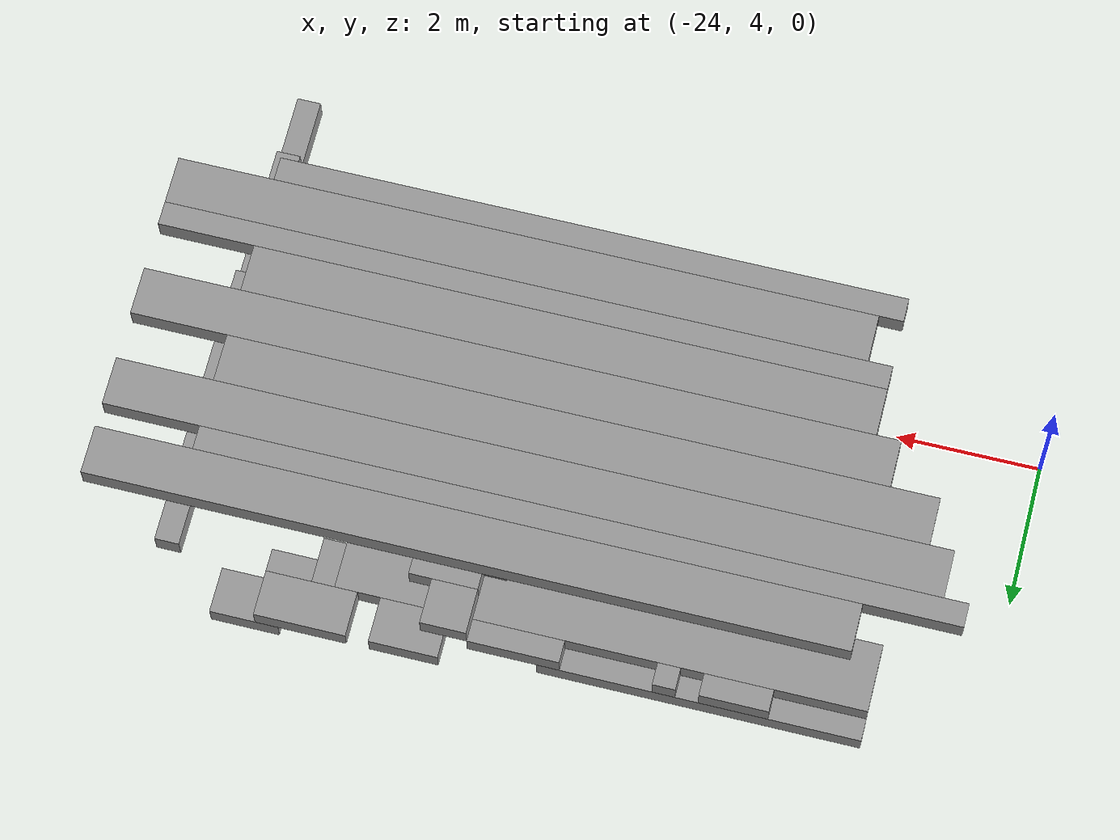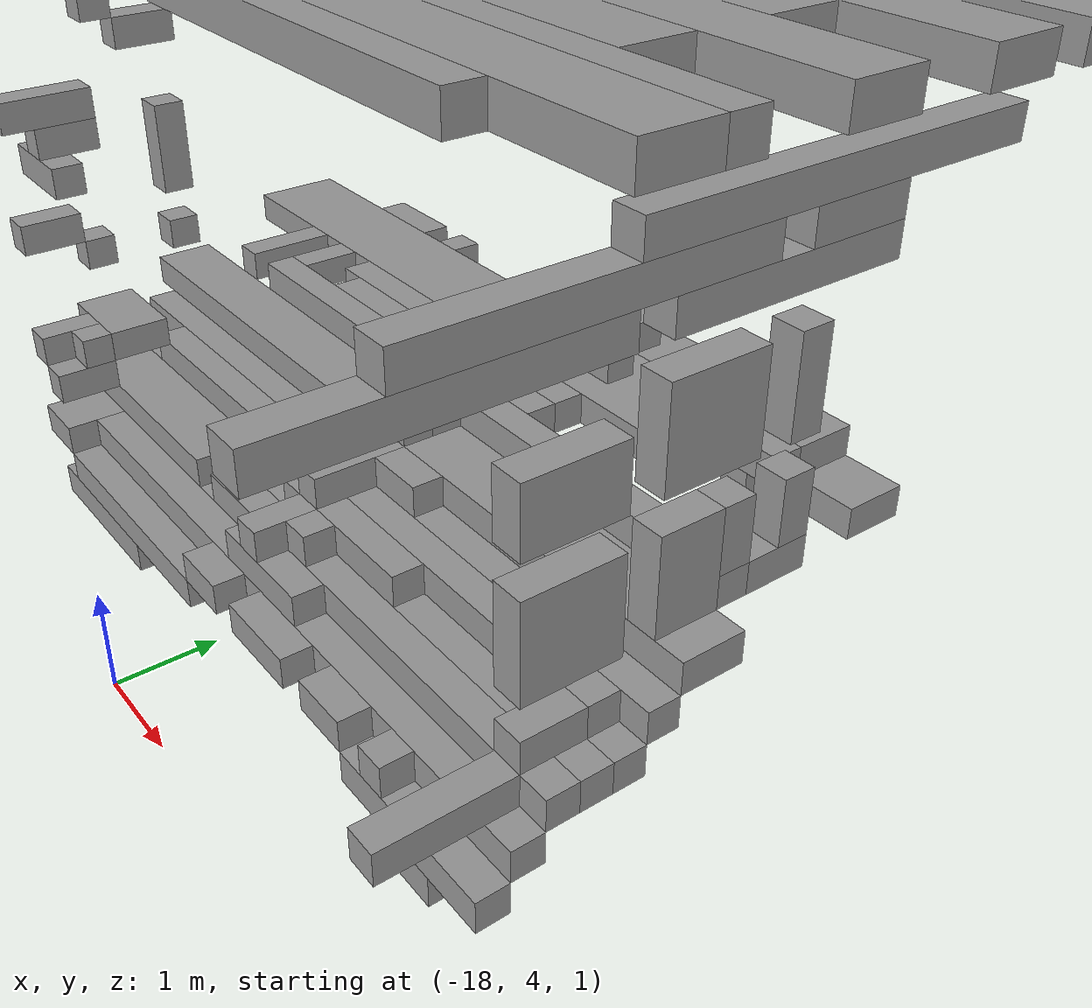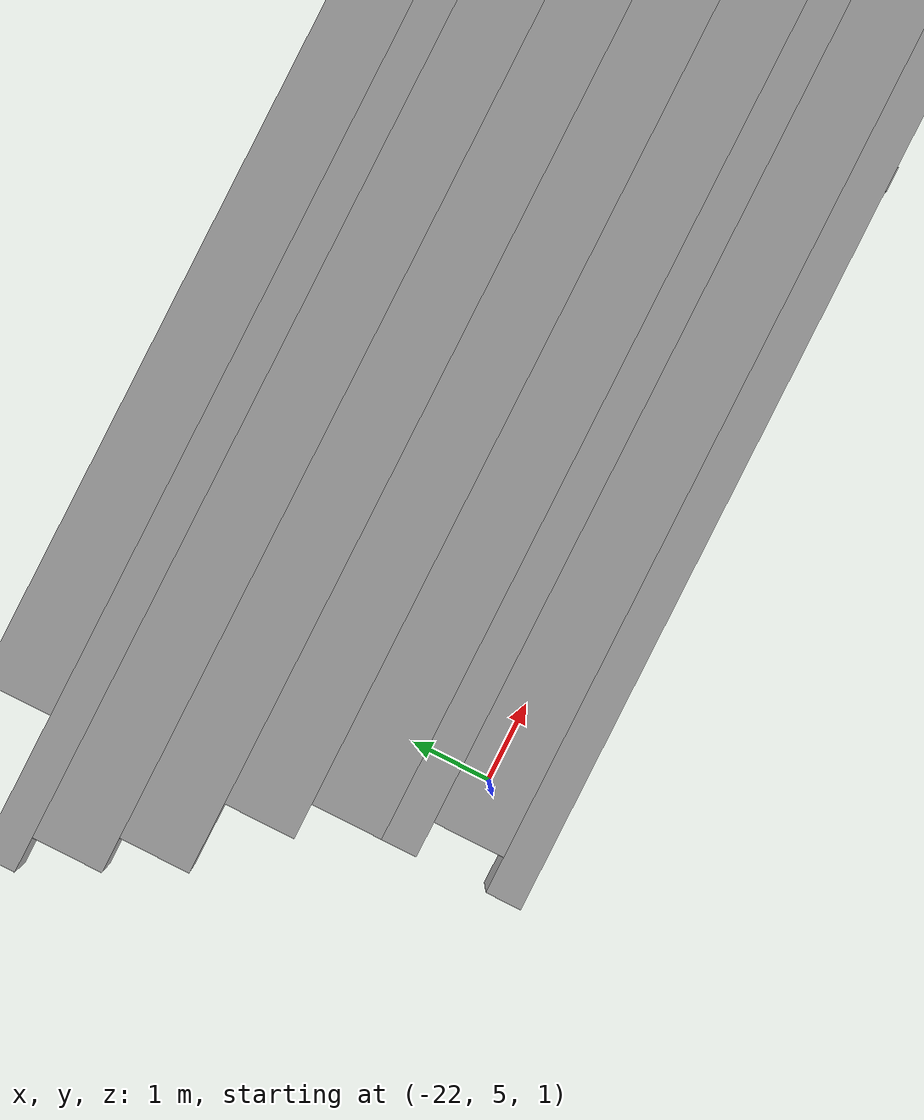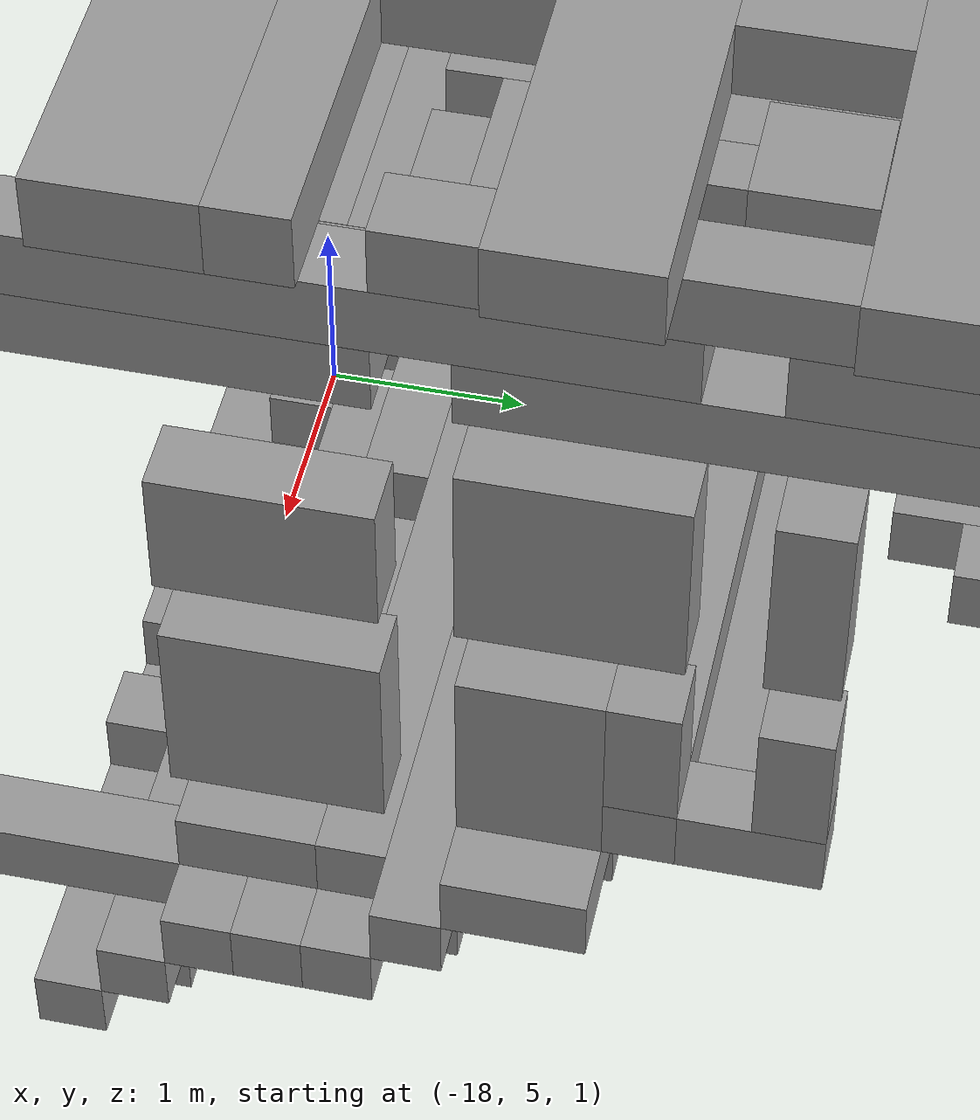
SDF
<sdf version="1.6">
 <world name="bt_world">
  <include><uri>model://sun</uri></include>
  <model name="obstacle_485">
   <static>true</static>
   <pose>-18.75 8.85 7.05 0 0 0</pose>
   <link name="link">
    <collision name="collision"><geometry><box><size>9.299999999999999 0.3 0.3</size></box></geometry></collision>
    <visual name="visual">
     <geometry><box><size>9.299999999999999 0.3 0.3</size></box></geometry>
     <material><ambient>0.5 0.5 0.5 1</ambient><diffuse>0.6 0.6 0.6 1</diffuse></material>
    </visual>
   </link>
  </model>
  <model name="obstacle_510">
   <static>true</static>
   <pose>-18.0 8.4 7.05 0 0 0</pose>
   <link name="link">
    <collision name="collision"><geometry><box><size>10.2 0.6 0.3</size></box></geometry></collision>
    <visual name="visual">
     <geometry><box><size>10.2 0.6 0.3</size></box></geometry>
     <material><ambient>0.5 0.5 0.5 1</ambient><diffuse>0.6 0.6 0.6 1</diffuse></material>
    </visual>
   </link>
  </model>
  <model name="obstacle_535">
   <static>true</static>
   <pose>-18.45 7.8 7.05 0 0 0</pose>
   <link name="link">
    <collision name="collision"><geometry><box><size>8.7 0.6 0.3</size></box></geometry></collision>
    <visual name="visual">
     <geometry><box><size>8.7 0.6 0.3</size></box></geometry>
     <material><ambient>0.5 0.5 0.5 1</ambient><diffuse>0.6 0.6 0.6 1</diffuse></material>
    </visual>
   </link>
  </model>
  <model name="obstacle_570">
   <static>true</static>
   <pose>-19.05 8.549999999999999 3.15 0 0 0</pose>
   <link name="link">
    <collision name="collision">
     <geometry><box><size>6.8999999999999995 0.8999999999999999 0.3</size></box></geometry>
    </collision>
    <visual name="visual">
     <geometry><box><size>6.8999999999999995 0.8999999999999999 0.3</size></box></geometry>
     <material><ambient>0.5 0.5 0.5 1</ambient><diffuse>0.6 0.6 0.6 1</diffuse></material>
    </visual>
   </link>
  </model>
  <model name="obstacle_577">
   <static>true</static>
   <pose>-20.4 9.15 2.85 0 0 0</pose>
   <link name="link">
    <collision name="collision"><geometry><box><size>4.2 0.3 0.3</size></box></geometry></collision>
    <visual name="visual">
     <geometry><box><size>4.2 0.3 0.3</size></box></geometry>
     <material><ambient>0.5 0.5 0.5 1</ambient><diffuse>0.6 0.6 0.6 1</diffuse></material>
    </visual>
   </link>
  </model>
  <model name="obstacle_620">
   <static>true</static>
   <pose>-17.849999999999998 6.8999999999999995 2.85 0 0 0</pose>
   <link name="link">
    <collision name="collision"><geometry><box><size>8.7 0.6 0.3</size></box></geometry></collision>
    <visual name="visual">
     <geometry><box><size>8.7 0.6 0.3</size></box></geometry>
     <material><ambient>0.5 0.5 0.5 1</ambient><diffuse>0.6 0.6 0.6 1</diffuse></material>
    </visual>
   </link>
  </model>
  <model name="obstacle_621">
   <static>true</static>
   <pose>-17.55 7.199999999999999 7.05 0 0 0</pose>
   <link name="link">
    <collision name="collision"><geometry><box><size>9.299999999999999 0.6 0.3</size></box></geometry></collision>
    <visual name="visual">
     <geometry><box><size>9.299999999999999 0.6 0.3</size></box></geometry>
     <material><ambient>0.5 0.5 0.5 1</ambient><diffuse>0.6 0.6 0.6 1</diffuse></material>
    </visual>
   </link>
  </model>
  <model name="obstacle_641">
   <static>true</static>
   <pose>-17.55 9.299999999999999 7.05 0 0 0</pose>
   <link name="link">
    <collision name="collision"><geometry><box><size>9.299999999999999 0.6 0.3</size></box></geometry></collision>
    <visual name="visual">
     <geometry><box><size>9.299999999999999 0.6 0.3</size></box></geometry>
     <material><ambient>0.5 0.5 0.5 1</ambient><diffuse>0.6 0.6 0.6 1</diffuse></material>
    </visual>
   </link>
  </model>
  <model name="obstacle_671">
   <static>true</static>
   <pose>-18.0 5.25 7.05 0 0 0</pose>
   <link name="link">
    <collision name="collision"><geometry><box><size>7.8 0.3 0.3</size></box></geometry></collision>
    <visual name="visual">
     <geometry><box><size>7.8 0.3 0.3</size></box></geometry>
     <material><ambient>0.5 0.5 0.5 1</ambient><diffuse>0.6 0.6 0.6 1</diffuse></material>
    </visual>
   </link>
  </model>
  <model name="obstacle_673">
   <static>true</static>
   <pose>-17.4 6.1499999999999995 7.05 0 0 0</pose>
   <link name="link">
    <collision name="collision"><geometry><box><size>9.0 0.3 0.3</size></box></geometry></collision>
    <visual name="visual">
     <geometry><box><size>9.0 0.3 0.3</size></box></geometry>
     <material><ambient>0.5 0.5 0.5 1</ambient><diffuse>0.6 0.6 0.6 1</diffuse></material>
    </visual>
   </link>
  </model>
  <model name="obstacle_674">
   <static>true</static>
   <pose>-19.5 6.45 2.55 0 0 0</pose>
   <link name="link">
    <collision name="collision"><geometry><box><size>4.8 0.3 0.3</size></box></geometry></collision>
    <visual name="visual">
     <geometry><box><size>4.8 0.3 0.3</size></box></geometry>
     <material><ambient>0.5 0.5 0.5 1</ambient><diffuse>0.6 0.6 0.6 1</diffuse></material>
    </visual>
   </link>
  </model>
  <model name="obstacle_676">
   <static>true</static>
   <pose>-18.0 6.6 7.05 0 0 0</pose>
   <link name="link">
    <collision name="collision"><geometry><box><size>7.8 0.6 0.3</size></box></geometry></collision>
    <visual name="visual">
     <geometry><box><size>7.8 0.6 0.3</size></box></geometry>
     <material><ambient>0.5 0.5 0.5 1</ambient><diffuse>0.6 0.6 0.6 1</diffuse></material>
    </visual>
   </link>
  </model>
  <model name="obstacle_712">
   <static>true</static>
   <pose>-21.15 5.25 4.6499999999999995 0 0 0</pose>
   <link name="link">
    <collision name="collision">
     <geometry><box><size>0.8999999999999999 0.3 0.3</size></box></geometry>
    </collision>
    <visual name="visual">
     <geometry><box><size>0.8999999999999999 0.3 0.3</size></box></geometry>
     <material><ambient>0.5 0.5 0.5 1</ambient><diffuse>0.6 0.6 0.6 1</diffuse></material>
    </visual>
   </link>
  </model>
  <model name="obstacle_713">
   <static>true</static>
   <pose>-20.25 5.7 2.25 0 0 0</pose>
   <link name="link">
    <collision name="collision">
     <geometry><box><size>2.6999999999999997 0.6 0.3</size></box></geometry>
    </collision>
    <visual name="visual">
     <geometry><box><size>2.6999999999999997 0.6 0.3</size></box></geometry>
     <material><ambient>0.5 0.5 0.5 1</ambient><diffuse>0.6 0.6 0.6 1</diffuse></material>
    </visual>
   </link>
  </model>
  <model name="obstacle_714">
   <static>true</static>
   <pose>-21.15 5.7 2.85 0 0 0</pose>
   <link name="link">
    <collision name="collision">
     <geometry><box><size>0.8999999999999999 0.6 0.3</size></box></geometry>
    </collision>
    <visual name="visual">
     <geometry><box><size>0.8999999999999999 0.6 0.3</size></box></geometry>
     <material><ambient>0.5 0.5 0.5 1</ambient><diffuse>0.6 0.6 0.6 1</diffuse></material>
    </visual>
   </link>
  </model>
  <model name="obstacle_719">
   <static>true</static>
   <pose>-17.25 5.7 7.05 0 0 0</pose>
   <link name="link">
    <collision name="collision"><geometry><box><size>8.7 0.6 0.3</size></box></geometry></collision>
    <visual name="visual">
     <geometry><box><size>8.7 0.6 0.3</size></box></geometry>
     <material><ambient>0.5 0.5 0.5 1</ambient><diffuse>0.6 0.6 0.6 1</diffuse></material>
    </visual>
   </link>
  </model>
  <model name="obstacle_732">
   <static>true</static>
   <pose>-19.5 6.75 2.55 0 0 0</pose>
   <link name="link">
    <collision name="collision"><geometry><box><size>4.2 0.3 0.3</size></box></geometry></collision>
    <visual name="visual">
     <geometry><box><size>4.2 0.3 0.3</size></box></geometry>
     <material><ambient>0.5 0.5 0.5 1</ambient><diffuse>0.6 0.6 0.6 1</diffuse></material>
    </visual>
   </link>
  </model>
  <model name="obstacle_770">
   <static>true</static>
   <pose>-21.0 5.1 1.95 0 0 0</pose>
   <link name="link">
    <collision name="collision"><geometry><box><size>0.6 0.6 0.3</size></box></geometry></collision>
    <visual name="visual">
     <geometry><box><size>0.6 0.6 0.3</size></box></geometry>
     <material><ambient>0.5 0.5 0.5 1</ambient><diffuse>0.6 0.6 0.6 1</diffuse></material>
    </visual>
   </link>
  </model>
  <model name="obstacle_771">
   <static>true</static>
   <pose>-21.15 5.1 2.85 0 0 0</pose>
   <link name="link">
    <collision name="collision"><geometry><box><size>0.3 0.6 0.3</size></box></geometry></collision>
    <visual name="visual">
     <geometry><box><size>0.3 0.6 0.3</size></box></geometry>
     <material><ambient>0.5 0.5 0.5 1</ambient><diffuse>0.6 0.6 0.6 1</diffuse></material>
    </visual>
   </link>
  </model>
  <model name="obstacle_772">
   <static>true</static>
   <pose>-21.15 5.1 4.05 0 0 0</pose>
   <link name="link">
    <collision name="collision"><geometry><box><size>0.3 0.6 0.3</size></box></geometry></collision>
    <visual name="visual">
     <geometry><box><size>0.3 0.6 0.3</size></box></geometry>
     <material><ambient>0.5 0.5 0.5 1</ambient><diffuse>0.6 0.6 0.6 1</diffuse></material>
    </visual>
   </link>
  </model>
  <model name="obstacle_773">
   <static>true</static>
   <pose>-21.15 5.25 5.25 0 0 0</pose>
   <link name="link">
    <collision name="collision">
     <geometry><box><size>0.3 0.8999999999999999 0.3</size></box></geometry>
    </collision>
    <visual name="visual">
     <geometry><box><size>0.3 0.8999999999999999 0.3</size></box></geometry>
     <material><ambient>0.5 0.5 0.5 1</ambient><diffuse>0.6 0.6 0.6 1</diffuse></material>
    </visual>
   </link>
  </model>
  <model name="obstacle_774">
   <static>true</static>
   <pose>-21.15 5.3999999999999995 4.95 0 0 0</pose>
   <link name="link">
    <collision name="collision"><geometry><box><size>0.3 0.6 0.3</size></box></geometry></collision>
    <visual name="visual">
     <geometry><box><size>0.3 0.6 0.3</size></box></geometry>
     <material><ambient>0.5 0.5 0.5 1</ambient><diffuse>0.6 0.6 0.6 1</diffuse></material>
    </visual>
   </link>
  </model>
  <model name="obstacle_775">
   <static>true</static>
   <pose>-21.15 5.7 1.95 0 0 0</pose>
   <link name="link">
    <collision name="collision"><geometry><box><size>0.3 0.6 0.3</size></box></geometry></collision>
    <visual name="visual">
     <geometry><box><size>0.3 0.6 0.3</size></box></geometry>
     <material><ambient>0.5 0.5 0.5 1</ambient><diffuse>0.6 0.6 0.6 1</diffuse></material>
    </visual>
   </link>
  </model>
  <model name="obstacle_776">
   <static>true</static>
   <pose>-21.15 5.55 3.75 0 0 0</pose>
   <link name="link">
    <collision name="collision"><geometry><box><size>0.3 0.3 0.3</size></box></geometry></collision>
    <visual name="visual">
     <geometry><box><size>0.3 0.3 0.3</size></box></geometry>
     <material><ambient>0.5 0.5 0.5 1</ambient><diffuse>0.6 0.6 0.6 1</diffuse></material>
    </visual>
   </link>
  </model>
  <model name="obstacle_777">
   <static>true</static>
   <pose>-21.15 5.85 6.1499999999999995 0 0 0</pose>
   <link name="link">
    <collision name="collision"><geometry><box><size>0.3 0.3 0.3</size></box></geometry></collision>
    <visual name="visual">
     <geometry><box><size>0.3 0.3 0.3</size></box></geometry>
     <material><ambient>0.5 0.5 0.5 1</ambient><diffuse>0.6 0.6 0.6 1</diffuse></material>
    </visual>
   </link>
  </model>
  <model name="obstacle_778">
   <static>true</static>
   <pose>-17.4 6.1499999999999995 2.25 0 0 0</pose>
   <link name="link">
    <collision name="collision"><geometry><box><size>7.8 0.3 0.3</size></box></geometry></collision>
    <visual name="visual">
     <geometry><box><size>7.8 0.3 0.3</size></box></geometry>
     <material><ambient>0.5 0.5 0.5 1</ambient><diffuse>0.6 0.6 0.6 1</diffuse></material>
    </visual>
   </link>
  </model>
  <model name="obstacle_779">
   <static>true</static>
   <pose>-21.15 6.3 5.85 0 0 0</pose>
   <link name="link">
    <collision name="collision"><geometry><box><size>0.3 0.6 0.3</size></box></geometry></collision>
    <visual name="visual">
     <geometry><box><size>0.3 0.6 0.3</size></box></geometry>
     <material><ambient>0.5 0.5 0.5 1</ambient><diffuse>0.6 0.6 0.6 1</diffuse></material>
    </visual>
   </link>
  </model>
  <model name="obstacle_780">
   <static>true</static>
   <pose>-17.55 6.45 2.25 0 0 0</pose>
   <link name="link">
    <collision name="collision"><geometry><box><size>7.5 0.3 0.3</size></box></geometry></collision>
    <visual name="visual">
     <geometry><box><size>7.5 0.3 0.3</size></box></geometry>
     <material><ambient>0.5 0.5 0.5 1</ambient><diffuse>0.6 0.6 0.6 1</diffuse></material>
    </visual>
   </link>
  </model>
  <model name="obstacle_781">
   <static>true</static>
   <pose>-21.15 6.45 3.75 0 0 0</pose>
   <link name="link">
    <collision name="collision"><geometry><box><size>0.3 0.3 0.3</size></box></geometry></collision>
    <visual name="visual">
     <geometry><box><size>0.3 0.3 0.3</size></box></geometry>
     <material><ambient>0.5 0.5 0.5 1</ambient><diffuse>0.6 0.6 0.6 1</diffuse></material>
    </visual>
   </link>
  </model>
  <model name="obstacle_782">
   <static>true</static>
   <pose>-21.15 6.45 4.6499999999999995 0 0 0</pose>
   <link name="link">
    <collision name="collision">
     <geometry><box><size>0.3 0.3 0.8999999999999999</size></box></geometry>
    </collision>
    <visual name="visual">
     <geometry><box><size>0.3 0.3 0.8999999999999999</size></box></geometry>
     <material><ambient>0.5 0.5 0.5 1</ambient><diffuse>0.6 0.6 0.6 1</diffuse></material>
    </visual>
   </link>
  </model>
  <model name="obstacle_783">
   <static>true</static>
   <pose>-21.15 6.8999999999999995 6.45 0 0 0</pose>
   <link name="link">
    <collision name="collision"><geometry><box><size>0.3 0.6 0.3</size></box></geometry></collision>
    <visual name="visual">
     <geometry><box><size>0.3 0.6 0.3</size></box></geometry>
     <material><ambient>0.5 0.5 0.5 1</ambient><diffuse>0.6 0.6 0.6 1</diffuse></material>
    </visual>
   </link>
  </model>
  <model name="obstacle_784">
   <static>true</static>
   <pose>-17.7 7.05 2.55 0 0 0</pose>
   <link name="link">
    <collision name="collision"><geometry><box><size>7.199999999999999 0.3 0.3</size></box></geometry></collision>
    <visual name="visual">
     <geometry><box><size>7.199999999999999 0.3 0.3</size></box></geometry>
     <material><ambient>0.5 0.5 0.5 1</ambient><diffuse>0.6 0.6 0.6 1</diffuse></material>
    </visual>
   </link>
  </model>
  <model name="obstacle_785">
   <static>true</static>
   <pose>-21.15 7.6499999999999995 3.15 0 0 0</pose>
   <link name="link">
    <collision name="collision">
     <geometry><box><size>0.3 0.8999999999999999 0.3</size></box></geometry>
    </collision>
    <visual name="visual">
     <geometry><box><size>0.3 0.8999999999999999 0.3</size></box></geometry>
     <material><ambient>0.5 0.5 0.5 1</ambient><diffuse>0.6 0.6 0.6 1</diffuse></material>
    </visual>
   </link>
  </model>
  <model name="obstacle_786">
   <static>true</static>
   <pose>-20.55 8.85 2.85 0 0 0</pose>
   <link name="link">
    <collision name="collision"><geometry><box><size>1.5 0.3 0.3</size></box></geometry></collision>
    <visual name="visual">
     <geometry><box><size>1.5 0.3 0.3</size></box></geometry>
     <material><ambient>0.5 0.5 0.5 1</ambient><diffuse>0.6 0.6 0.6 1</diffuse></material>
    </visual>
   </link>
  </model>
  <model name="obstacle_787">
   <static>true</static>
   <pose>-20.849999999999998 9.15 3.15 0 0 0</pose>
   <link name="link">
    <collision name="collision">
     <geometry><box><size>0.8999999999999999 0.3 0.3</size></box></geometry>
    </collision>
    <visual name="visual">
     <geometry><box><size>0.8999999999999999 0.3 0.3</size></box></geometry>
     <material><ambient>0.5 0.5 0.5 1</ambient><diffuse>0.6 0.6 0.6 1</diffuse></material>
    </visual>
   </link>
  </model>
  <model name="obstacle_830">
   <static>true</static>
   <pose>-20.099999999999998 4.95 1.3499999999999999 0 0 0</pose>
   <link name="link">
    <collision name="collision">
     <geometry><box><size>1.7999999999999998 0.3 0.3</size></box></geometry>
    </collision>
    <visual name="visual">
     <geometry><box><size>1.7999999999999998 0.3 0.3</size></box></geometry>
     <material><ambient>0.5 0.5 0.5 1</ambient><diffuse>0.6 0.6 0.6 1</diffuse></material>
    </visual>
   </link>
  </model>
  <model name="obstacle_831">
   <static>true</static>
   <pose>-20.849999999999998 5.1 2.55 0 0 0</pose>
   <link name="link">
    <collision name="collision"><geometry><box><size>0.3 0.6 0.3</size></box></geometry></collision>
    <visual name="visual">
     <geometry><box><size>0.3 0.6 0.3</size></box></geometry>
     <material><ambient>0.5 0.5 0.5 1</ambient><diffuse>0.6 0.6 0.6 1</diffuse></material>
    </visual>
   </link>
  </model>
  <model name="obstacle_832">
   <static>true</static>
   <pose>-19.5 5.25 1.65 0 0 0</pose>
   <link name="link">
    <collision name="collision"><geometry><box><size>3.0 0.3 0.3</size></box></geometry></collision>
    <visual name="visual">
     <geometry><box><size>3.0 0.3 0.3</size></box></geometry>
     <material><ambient>0.5 0.5 0.5 1</ambient><diffuse>0.6 0.6 0.6 1</diffuse></material>
    </visual>
   </link>
  </model>
  <model name="obstacle_833">
   <static>true</static>
   <pose>-20.849999999999998 5.25 2.85 0 0 0</pose>
   <link name="link">
    <collision name="collision"><geometry><box><size>0.3 0.3 0.3</size></box></geometry></collision>
    <visual name="visual">
     <geometry><box><size>0.3 0.3 0.3</size></box></geometry>
     <material><ambient>0.5 0.5 0.5 1</ambient><diffuse>0.6 0.6 0.6 1</diffuse></material>
    </visual>
   </link>
  </model>
  <model name="obstacle_834">
   <static>true</static>
   <pose>-19.05 5.85 1.95 0 0 0</pose>
   <link name="link">
    <collision name="collision"><geometry><box><size>3.9 0.3 0.3</size></box></geometry></collision>
    <visual name="visual">
     <geometry><box><size>3.9 0.3 0.3</size></box></geometry>
     <material><ambient>0.5 0.5 0.5 1</ambient><diffuse>0.6 0.6 0.6 1</diffuse></material>
    </visual>
   </link>
  </model>
  <model name="obstacle_835">
   <static>true</static>
   <pose>-17.4 6.1499999999999995 2.55 0 0 0</pose>
   <link name="link">
    <collision name="collision"><geometry><box><size>7.199999999999999 0.3 0.3</size></box></geometry></collision>
    <visual name="visual">
     <geometry><box><size>7.199999999999999 0.3 0.3</size></box></geometry>
     <material><ambient>0.5 0.5 0.5 1</ambient><diffuse>0.6 0.6 0.6 1</diffuse></material>
    </visual>
   </link>
  </model>
  <model name="obstacle_884">
   <static>true</static>
   <pose>-19.349999999999998 4.95 1.65 0 0 0</pose>
   <link name="link">
    <collision name="collision">
     <geometry><box><size>2.6999999999999997 0.3 0.3</size></box></geometry>
    </collision>
    <visual name="visual">
     <geometry><box><size>2.6999999999999997 0.3 0.3</size></box></geometry>
     <material><ambient>0.5 0.5 0.5 1</ambient><diffuse>0.6 0.6 0.6 1</diffuse></material>
    </visual>
   </link>
  </model>
  <model name="obstacle_885">
   <static>true</static>
   <pose>-17.099999999999998 5.25 1.95 0 0 0</pose>
   <link name="link">
    <collision name="collision"><geometry><box><size>7.199999999999999 0.3 0.3</size></box></geometry></collision>
    <visual name="visual">
     <geometry><box><size>7.199999999999999 0.3 0.3</size></box></geometry>
     <material><ambient>0.5 0.5 0.5 1</ambient><diffuse>0.6 0.6 0.6 1</diffuse></material>
    </visual>
   </link>
  </model>
  <model name="obstacle_886">
   <static>true</static>
   <pose>-17.849999999999998 5.55 1.95 0 0 0</pose>
   <link name="link">
    <collision name="collision"><geometry><box><size>5.7 0.3 0.3</size></box></geometry></collision>
    <visual name="visual">
     <geometry><box><size>5.7 0.3 0.3</size></box></geometry>
     <material><ambient>0.5 0.5 0.5 1</ambient><diffuse>0.6 0.6 0.6 1</diffuse></material>
    </visual>
   </link>
  </model>
  <model name="obstacle_887">
   <static>true</static>
   <pose>-19.95 7.5 2.85 0 0 0</pose>
   <link name="link">
    <collision name="collision"><geometry><box><size>1.5 0.6 0.3</size></box></geometry></collision>
    <visual name="visual">
     <geometry><box><size>1.5 0.6 0.3</size></box></geometry>
     <material><ambient>0.5 0.5 0.5 1</ambient><diffuse>0.6 0.6 0.6 1</diffuse></material>
    </visual>
   </link>
  </model>
  <model name="obstacle_888">
   <static>true</static>
   <pose>-19.65 7.35 3.15 0 0 0</pose>
   <link name="link">
    <collision name="collision"><geometry><box><size>2.1 0.3 0.3</size></box></geometry></collision>
    <visual name="visual">
     <geometry><box><size>2.1 0.3 0.3</size></box></geometry>
     <material><ambient>0.5 0.5 0.5 1</ambient><diffuse>0.6 0.6 0.6 1</diffuse></material>
    </visual>
   </link>
  </model>
  <model name="obstacle_889">
   <static>true</static>
   <pose>-20.55 7.8 3.15 0 0 0</pose>
   <link name="link">
    <collision name="collision"><geometry><box><size>0.3 0.6 0.3</size></box></geometry></collision>
    <visual name="visual">
     <geometry><box><size>0.3 0.6 0.3</size></box></geometry>
     <material><ambient>0.5 0.5 0.5 1</ambient><diffuse>0.6 0.6 0.6 1</diffuse></material>
    </visual>
   </link>
  </model>
  <model name="obstacle_936">
   <static>true</static>
   <pose>-20.25 8.25 2.85 0 0 0</pose>
   <link name="link">
    <collision name="collision"><geometry><box><size>0.3 0.3 0.3</size></box></geometry></collision>
    <visual name="visual">
     <geometry><box><size>0.3 0.3 0.3</size></box></geometry>
     <material><ambient>0.5 0.5 0.5 1</ambient><diffuse>0.6 0.6 0.6 1</diffuse></material>
    </visual>
   </link>
  </model>
  <model name="obstacle_962">
   <static>true</static>
   <pose>-18.3 7.949999999999999 3.15 0 0 0</pose>
   <link name="link">
    <collision name="collision">
     <geometry><box><size>3.5999999999999996 0.3 0.3</size></box></geometry>
    </collision>
    <visual name="visual">
     <geometry><box><size>3.5999999999999996 0.3 0.3</size></box></geometry>
     <material><ambient>0.5 0.5 0.5 1</ambient><diffuse>0.6 0.6 0.6 1</diffuse></material>
    </visual>
   </link>
  </model>
  <model name="obstacle_963">
   <static>true</static>
   <pose>-19.95 8.549999999999999 2.85 0 0 0</pose>
   <link name="link">
    <collision name="collision"><geometry><box><size>0.3 0.3 0.3</size></box></geometry></collision>
    <visual name="visual">
     <geometry><box><size>0.3 0.3 0.3</size></box></geometry>
     <material><ambient>0.5 0.5 0.5 1</ambient><diffuse>0.6 0.6 0.6 1</diffuse></material>
    </visual>
   </link>
  </model>
  <model name="obstacle_964">
   <static>true</static>
   <pose>-19.95 9.15 3.15 0 0 0</pose>
   <link name="link">
    <collision name="collision"><geometry><box><size>0.3 0.3 0.3</size></box></geometry></collision>
    <visual name="visual">
     <geometry><box><size>0.3 0.3 0.3</size></box></geometry>
     <material><ambient>0.5 0.5 0.5 1</ambient><diffuse>0.6 0.6 0.6 1</diffuse></material>
    </visual>
   </link>
  </model>
  <model name="obstacle_984">
   <static>true</static>
   <pose>-18.15 7.6499999999999995 3.15 0 0 0</pose>
   <link name="link">
    <collision name="collision"><geometry><box><size>3.3 0.3 0.3</size></box></geometry></collision>
    <visual name="visual">
     <geometry><box><size>3.3 0.3 0.3</size></box></geometry>
     <material><ambient>0.5 0.5 0.5 1</ambient><diffuse>0.6 0.6 0.6 1</diffuse></material>
    </visual>
   </link>
  </model>
  <model name="obstacle_1018">
   <static>true</static>
   <pose>-18.75 8.85 2.85 0 0 0</pose>
   <link name="link">
    <collision name="collision">
     <geometry><box><size>0.8999999999999999 0.3 0.3</size></box></geometry>
    </collision>
    <visual name="visual">
     <geometry><box><size>0.8999999999999999 0.3 0.3</size></box></geometry>
     <material><ambient>0.5 0.5 0.5 1</ambient><diffuse>0.6 0.6 0.6 1</diffuse></material>
    </visual>
   </link>
  </model>
  <model name="obstacle_1028">
   <static>true</static>
   <pose>-16.2 5.85 2.25 0 0 0</pose>
   <link name="link">
    <collision name="collision">
     <geometry><box><size>5.3999999999999995 0.3 0.3</size></box></geometry>
    </collision>
    <visual name="visual">
     <geometry><box><size>5.3999999999999995 0.3 0.3</size></box></geometry>
     <material><ambient>0.5 0.5 0.5 1</ambient><diffuse>0.6 0.6 0.6 1</diffuse></material>
    </visual>
   </link>
  </model>
  <model name="obstacle_1037">
   <static>true</static>
   <pose>-16.05 5.55 2.25 0 0 0</pose>
   <link name="link">
    <collision name="collision"><geometry><box><size>5.1 0.3 0.3</size></box></geometry></collision>
    <visual name="visual">
     <geometry><box><size>5.1 0.3 0.3</size></box></geometry>
     <material><ambient>0.5 0.5 0.5 1</ambient><diffuse>0.6 0.6 0.6 1</diffuse></material>
    </visual>
   </link>
  </model>
  <model name="obstacle_1038">
   <static>true</static>
   <pose>-18.0 9.15 3.15 0 0 0</pose>
   <link name="link">
    <collision name="collision"><geometry><box><size>1.2 0.3 0.3</size></box></geometry></collision>
    <visual name="visual">
     <geometry><box><size>1.2 0.3 0.3</size></box></geometry>
     <material><ambient>0.5 0.5 0.5 1</ambient><diffuse>0.6 0.6 0.6 1</diffuse></material>
    </visual>
   </link>
  </model>
  <model name="obstacle_1060">
   <static>true</static>
   <pose>-17.849999999999998 7.35 3.15 0 0 0</pose>
   <link name="link">
    <collision name="collision">
     <geometry><box><size>0.8999999999999999 0.3 0.3</size></box></geometry>
    </collision>
    <visual name="visual">
     <geometry><box><size>0.8999999999999999 0.3 0.3</size></box></geometry>
     <material><ambient>0.5 0.5 0.5 1</ambient><diffuse>0.6 0.6 0.6 1</diffuse></material>
    </visual>
   </link>
  </model>
  <model name="obstacle_1076">
   <static>true</static>
   <pose>-17.7 4.95 1.95 0 0 0</pose>
   <link name="link">
    <collision name="collision"><geometry><box><size>0.6 0.3 0.3</size></box></geometry></collision>
    <visual name="visual">
     <geometry><box><size>0.6 0.3 0.3</size></box></geometry>
     <material><ambient>0.5 0.5 0.5 1</ambient><diffuse>0.6 0.6 0.6 1</diffuse></material>
    </visual>
   </link>
  </model>
  <model name="obstacle_1095">
   <static>true</static>
   <pose>-17.099999999999998 5.25 2.25 0 0 0</pose>
   <link name="link">
    <collision name="collision"><geometry><box><size>1.2 0.3 0.3</size></box></geometry></collision>
    <visual name="visual">
     <geometry><box><size>1.2 0.3 0.3</size></box></geometry>
     <material><ambient>0.5 0.5 0.5 1</ambient><diffuse>0.6 0.6 0.6 1</diffuse></material>
    </visual>
   </link>
  </model>
  <model name="obstacle_1096">
   <static>true</static>
   <pose>-16.8 5.85 2.55 0 0 0</pose>
   <link name="link">
    <collision name="collision">
     <geometry><box><size>1.7999999999999998 0.3 0.3</size></box></geometry>
    </collision>
    <visual name="visual">
     <geometry><box><size>1.7999999999999998 0.3 0.3</size></box></geometry>
     <material><ambient>0.5 0.5 0.5 1</ambient><diffuse>0.6 0.6 0.6 1</diffuse></material>
    </visual>
   </link>
  </model>
  <model name="obstacle_1097">
   <static>true</static>
   <pose>-17.4 7.05 3.15 0 0 0</pose>
   <link name="link">
    <collision name="collision"><geometry><box><size>0.6 0.3 0.3</size></box></geometry></collision>
    <visual name="visual">
     <geometry><box><size>0.6 0.3 0.3</size></box></geometry>
     <material><ambient>0.5 0.5 0.5 1</ambient><diffuse>0.6 0.6 0.6 1</diffuse></material>
    </visual>
   </link>
  </model>
  <model name="obstacle_1098">
   <static>true</static>
   <pose>-17.4 7.5 3.4499999999999997 0 0 0</pose>
   <link name="link">
    <collision name="collision"><geometry><box><size>0.6 0.6 0.3</size></box></geometry></collision>
    <visual name="visual">
     <geometry><box><size>0.6 0.6 0.3</size></box></geometry>
     <material><ambient>0.5 0.5 0.5 1</ambient><diffuse>0.6 0.6 0.6 1</diffuse></material>
    </visual>
   </link>
  </model>
  <model name="obstacle_1099">
   <static>true</static>
   <pose>-17.25 8.25 3.4499999999999997 0 0 0</pose>
   <link name="link">
    <collision name="collision">
     <geometry><box><size>0.8999999999999999 0.3 0.3</size></box></geometry>
    </collision>
    <visual name="visual">
     <geometry><box><size>0.8999999999999999 0.3 0.3</size></box></geometry>
     <material><ambient>0.5 0.5 0.5 1</ambient><diffuse>0.6 0.6 0.6 1</diffuse></material>
    </visual>
   </link>
  </model>
  <model name="obstacle_1116">
   <static>true</static>
   <pose>-17.25 5.3999999999999995 2.55 0 0 0</pose>
   <link name="link">
    <collision name="collision"><geometry><box><size>0.3 0.6 0.3</size></box></geometry></collision>
    <visual name="visual">
     <geometry><box><size>0.3 0.6 0.3</size></box></geometry>
     <material><ambient>0.5 0.5 0.5 1</ambient><diffuse>0.6 0.6 0.6 1</diffuse></material>
    </visual>
   </link>
  </model>
  <model name="obstacle_1117">
   <static>true</static>
   <pose>-17.25 6.1499999999999995 2.85 0 0 0</pose>
   <link name="link">
    <collision name="collision">
     <geometry><box><size>0.3 0.8999999999999999 0.3</size></box></geometry>
    </collision>
    <visual name="visual">
     <geometry><box><size>0.3 0.8999999999999999 0.3</size></box></geometry>
     <material><ambient>0.5 0.5 0.5 1</ambient><diffuse>0.6 0.6 0.6 1</diffuse></material>
    </visual>
   </link>
  </model>
  <model name="obstacle_1118">
   <static>true</static>
   <pose>-17.25 6.75 3.15 0 0 0</pose>
   <link name="link">
    <collision name="collision"><geometry><box><size>0.3 0.3 0.3</size></box></geometry></collision>
    <visual name="visual">
     <geometry><box><size>0.3 0.3 0.3</size></box></geometry>
     <material><ambient>0.5 0.5 0.5 1</ambient><diffuse>0.6 0.6 0.6 1</diffuse></material>
    </visual>
   </link>
  </model>
  <model name="obstacle_1119">
   <static>true</static>
   <pose>-17.25 7.05 3.4499999999999997 0 0 0</pose>
   <link name="link">
    <collision name="collision"><geometry><box><size>0.3 0.3 0.3</size></box></geometry></collision>
    <visual name="visual">
     <geometry><box><size>0.3 0.3 0.3</size></box></geometry>
     <material><ambient>0.5 0.5 0.5 1</ambient><diffuse>0.6 0.6 0.6 1</diffuse></material>
    </visual>
   </link>
  </model>
  <model name="obstacle_1120">
   <static>true</static>
   <pose>-17.25 7.949999999999999 3.4499999999999997 0 0 0</pose>
   <link name="link">
    <collision name="collision"><geometry><box><size>0.3 0.3 0.3</size></box></geometry></collision>
    <visual name="visual">
     <geometry><box><size>0.3 0.3 0.3</size></box></geometry>
     <material><ambient>0.5 0.5 0.5 1</ambient><diffuse>0.6 0.6 0.6 1</diffuse></material>
    </visual>
   </link>
  </model>
  <model name="obstacle_1121">
   <static>true</static>
   <pose>-16.95 8.549999999999999 3.4499999999999997 0 0 0</pose>
   <link name="link">
    <collision name="collision">
     <geometry><box><size>0.8999999999999999 0.3 0.3</size></box></geometry>
    </collision>
    <visual name="visual">
     <geometry><box><size>0.8999999999999999 0.3 0.3</size></box></geometry>
     <material><ambient>0.5 0.5 0.5 1</ambient><diffuse>0.6 0.6 0.6 1</diffuse></material>
    </visual>
   </link>
  </model>
  <model name="obstacle_1122">
   <static>true</static>
   <pose>-17.099999999999998 9.0 3.4499999999999997 0 0 0</pose>
   <link name="link">
    <collision name="collision"><geometry><box><size>0.6 0.6 0.3</size></box></geometry></collision>
    <visual name="visual">
     <geometry><box><size>0.6 0.6 0.3</size></box></geometry>
     <material><ambient>0.5 0.5 0.5 1</ambient><diffuse>0.6 0.6 0.6 1</diffuse></material>
    </visual>
   </link>
  </model>
  <model name="obstacle_1167">
   <static>true</static>
   <pose>-16.65 4.95 1.95 0 0 0</pose>
   <link name="link">
    <collision name="collision">
     <geometry><box><size>0.8999999999999999 0.3 0.3</size></box></geometry>
    </collision>
    <visual name="visual">
     <geometry><box><size>0.8999999999999999 0.3 0.3</size></box></geometry>
     <material><ambient>0.5 0.5 0.5 1</ambient><diffuse>0.6 0.6 0.6 1</diffuse></material>
    </visual>
   </link>
  </model>
  <model name="obstacle_1168">
   <static>true</static>
   <pose>-16.95 5.55 2.55 0 0 0</pose>
   <link name="link">
    <collision name="collision"><geometry><box><size>0.3 0.3 0.3</size></box></geometry></collision>
    <visual name="visual">
     <geometry><box><size>0.3 0.3 0.3</size></box></geometry>
     <material><ambient>0.5 0.5 0.5 1</ambient><diffuse>0.6 0.6 0.6 1</diffuse></material>
    </visual>
   </link>
  </model>
  <model name="obstacle_1169">
   <static>true</static>
   <pose>-16.8 6.45 2.85 0 0 0</pose>
   <link name="link">
    <collision name="collision"><geometry><box><size>0.6 0.3 0.3</size></box></geometry></collision>
    <visual name="visual">
     <geometry><box><size>0.6 0.3 0.3</size></box></geometry>
     <material><ambient>0.5 0.5 0.5 1</ambient><diffuse>0.6 0.6 0.6 1</diffuse></material>
    </visual>
   </link>
  </model>
  <model name="obstacle_1170">
   <static>true</static>
   <pose>-15.45 6.75 2.55 0 0 0</pose>
   <link name="link">
    <collision name="collision"><geometry><box><size>3.3 0.3 0.3</size></box></geometry></collision>
    <visual name="visual">
     <geometry><box><size>3.3 0.3 0.3</size></box></geometry>
     <material><ambient>0.5 0.5 0.5 1</ambient><diffuse>0.6 0.6 0.6 1</diffuse></material>
    </visual>
   </link>
  </model>
  <model name="obstacle_1171">
   <static>true</static>
   <pose>-15.45 7.35 3.15 0 0 0</pose>
   <link name="link">
    <collision name="collision"><geometry><box><size>3.3 0.3 0.3</size></box></geometry></collision>
    <visual name="visual">
     <geometry><box><size>3.3 0.3 0.3</size></box></geometry>
     <material><ambient>0.5 0.5 0.5 1</ambient><diffuse>0.6 0.6 0.6 1</diffuse></material>
    </visual>
   </link>
  </model>
  <model name="obstacle_1172">
   <static>true</static>
   <pose>-16.65 9.299999999999999 3.15 0 0 0</pose>
   <link name="link">
    <collision name="collision">
     <geometry><box><size>0.8999999999999999 0.6 0.3</size></box></geometry>
    </collision>
    <visual name="visual">
     <geometry><box><size>0.8999999999999999 0.6 0.3</size></box></geometry>
     <material><ambient>0.5 0.5 0.5 1</ambient><diffuse>0.6 0.6 0.6 1</diffuse></material>
    </visual>
   </link>
  </model>
  <model name="obstacle_1197">
   <static>true</static>
   <pose>-15.899999999999999 5.85 1.95 0 0 0</pose>
   <link name="link">
    <collision name="collision">
     <geometry><box><size>1.7999999999999998 0.3 0.3</size></box></geometry>
    </collision>
    <visual name="visual">
     <geometry><box><size>1.7999999999999998 0.3 0.3</size></box></geometry>
     <material><ambient>0.5 0.5 0.5 1</ambient><diffuse>0.6 0.6 0.6 1</diffuse></material>
    </visual>
   </link>
  </model>
  <model name="obstacle_1198">
   <static>true</static>
   <pose>-15.149999999999999 6.45 2.55 0 0 0</pose>
   <link name="link">
    <collision name="collision"><geometry><box><size>3.3 0.3 0.3</size></box></geometry></collision>
    <visual name="visual">
     <geometry><box><size>3.3 0.3 0.3</size></box></geometry>
     <material><ambient>0.5 0.5 0.5 1</ambient><diffuse>0.6 0.6 0.6 1</diffuse></material>
    </visual>
   </link>
  </model>
  <model name="obstacle_1213">
   <static>true</static>
   <pose>-15.299999999999999 7.5 2.85 0 0 0</pose>
   <link name="link">
    <collision name="collision"><geometry><box><size>2.4 0.6 0.3</size></box></geometry></collision>
    <visual name="visual">
     <geometry><box><size>2.4 0.6 0.3</size></box></geometry>
     <material><ambient>0.5 0.5 0.5 1</ambient><diffuse>0.6 0.6 0.6 1</diffuse></material>
    </visual>
   </link>
  </model>
  <model name="obstacle_1242">
   <static>true</static>
   <pose>-15.6 4.95 1.95 0 0 0</pose>
   <link name="link">
    <collision name="collision"><geometry><box><size>0.6 0.3 0.3</size></box></geometry></collision>
    <visual name="visual">
     <geometry><box><size>0.6 0.3 0.3</size></box></geometry>
     <material><ambient>0.5 0.5 0.5 1</ambient><diffuse>0.6 0.6 0.6 1</diffuse></material>
    </visual>
   </link>
  </model>
  <model name="obstacle_1243">
   <static>true</static>
   <pose>-15.299999999999999 9.299999999999999 3.15 0 0 0</pose>
   <link name="link">
    <collision name="collision"><geometry><box><size>1.2 0.6 0.3</size></box></geometry></collision>
    <visual name="visual">
     <geometry><box><size>1.2 0.6 0.3</size></box></geometry>
     <material><ambient>0.5 0.5 0.5 1</ambient><diffuse>0.6 0.6 0.6 1</diffuse></material>
    </visual>
   </link>
  </model>
  <model name="obstacle_1253">
   <static>true</static>
   <pose>-15.45 8.7 3.15 0 0 0</pose>
   <link name="link">
    <collision name="collision"><geometry><box><size>0.3 0.6 0.3</size></box></geometry></collision>
    <visual name="visual">
     <geometry><box><size>0.3 0.6 0.3</size></box></geometry>
     <material><ambient>0.5 0.5 0.5 1</ambient><diffuse>0.6 0.6 0.6 1</diffuse></material>
    </visual>
   </link>
  </model>
  <model name="obstacle_1265">
   <static>true</static>
   <pose>-14.399999999999999 4.95 1.65 0 0 0</pose>
   <link name="link">
    <collision name="collision">
     <geometry><box><size>1.7999999999999998 0.3 0.3</size></box></geometry>
    </collision>
    <visual name="visual">
     <geometry><box><size>1.7999999999999998 0.3 0.3</size></box></geometry>
     <material><ambient>0.5 0.5 0.5 1</ambient><diffuse>0.6 0.6 0.6 1</diffuse></material>
    </visual>
   </link>
  </model>
  <model name="obstacle_1266">
   <static>true</static>
   <pose>-14.549999999999999 5.25 1.65 0 0 0</pose>
   <link name="link">
    <collision name="collision"><geometry><box><size>1.5 0.3 0.3</size></box></geometry></collision>
    <visual name="visual">
     <geometry><box><size>1.5 0.3 0.3</size></box></geometry>
     <material><ambient>0.5 0.5 0.5 1</ambient><diffuse>0.6 0.6 0.6 1</diffuse></material>
    </visual>
   </link>
  </model>
  <model name="obstacle_1267">
   <static>true</static>
   <pose>-15.149999999999999 9.0 2.85 0 0 0</pose>
   <link name="link">
    <collision name="collision"><geometry><box><size>0.3 0.6 0.3</size></box></geometry></collision>
    <visual name="visual">
     <geometry><box><size>0.3 0.6 0.3</size></box></geometry>
     <material><ambient>0.5 0.5 0.5 1</ambient><diffuse>0.6 0.6 0.6 1</diffuse></material>
    </visual>
   </link>
  </model>
  <model name="obstacle_1268">
   <static>true</static>
   <pose>-15.0 8.85 3.15 0 0 0</pose>
   <link name="link">
    <collision name="collision"><geometry><box><size>0.6 0.3 0.3</size></box></geometry></collision>
    <visual name="visual">
     <geometry><box><size>0.6 0.3 0.3</size></box></geometry>
     <material><ambient>0.5 0.5 0.5 1</ambient><diffuse>0.6 0.6 0.6 1</diffuse></material>
    </visual>
   </link>
  </model>
  <model name="obstacle_1274">
   <static>true</static>
   <pose>-14.85 4.95 1.95 0 0 0</pose>
   <link name="link">
    <collision name="collision"><geometry><box><size>0.3 0.3 0.3</size></box></geometry></collision>
    <visual name="visual">
     <geometry><box><size>0.3 0.3 0.3</size></box></geometry>
     <material><ambient>0.5 0.5 0.5 1</ambient><diffuse>0.6 0.6 0.6 1</diffuse></material>
    </visual>
   </link>
  </model>
  <model name="obstacle_1275">
   <static>true</static>
   <pose>-14.549999999999999 9.299999999999999 2.85 0 0 0</pose>
   <link name="link">
    <collision name="collision">
     <geometry><box><size>0.8999999999999999 0.6 0.3</size></box></geometry>
    </collision>
    <visual name="visual">
     <geometry><box><size>0.8999999999999999 0.6 0.3</size></box></geometry>
     <material><ambient>0.5 0.5 0.5 1</ambient><diffuse>0.6 0.6 0.6 1</diffuse></material>
    </visual>
   </link>
  </model>
  <model name="obstacle_1288">
   <static>true</static>
   <pose>-14.399999999999999 4.95 1.3499999999999999 0 0 0</pose>
   <link name="link">
    <collision name="collision"><geometry><box><size>0.6 0.3 0.3</size></box></geometry></collision>
    <visual name="visual">
     <geometry><box><size>0.6 0.3 0.3</size></box></geometry>
     <material><ambient>0.5 0.5 0.5 1</ambient><diffuse>0.6 0.6 0.6 1</diffuse></material>
    </visual>
   </link>
  </model>
  <model name="obstacle_1342">
   <static>true</static>
   <pose>-13.95 4.95 5.55 0 0 0</pose>
   <link name="link">
    <collision name="collision">
     <geometry><box><size>0.3 2.6999999999999997 0.3</size></box></geometry>
    </collision>
    <visual name="visual">
     <geometry><box><size>0.3 2.6999999999999997 0.3</size></box></geometry>
     <material><ambient>0.5 0.5 0.5 1</ambient><diffuse>0.6 0.6 0.6 1</diffuse></material>
    </visual>
   </link>
  </model>
  <model name="obstacle_1347">
   <static>true</static>
   <pose>-13.95 4.8 2.25 0 0 0</pose>
   <link name="link">
    <collision name="collision"><geometry><box><size>0.3 1.2 0.3</size></box></geometry></collision>
    <visual name="visual">
     <geometry><box><size>0.3 1.2 0.3</size></box></geometry>
     <material><ambient>0.5 0.5 0.5 1</ambient><diffuse>0.6 0.6 0.6 1</diffuse></material>
    </visual>
   </link>
  </model>
  <model name="obstacle_1350">
   <static>true</static>
   <pose>-13.95 6.0 5.85 0 0 0</pose>
   <link name="link">
    <collision name="collision"><geometry><box><size>0.3 3.0 0.3</size></box></geometry></collision>
    <visual name="visual">
     <geometry><box><size>0.3 3.0 0.3</size></box></geometry>
     <material><ambient>0.5 0.5 0.5 1</ambient><diffuse>0.6 0.6 0.6 1</diffuse></material>
    </visual>
   </link>
  </model>
  <model name="obstacle_1352">
   <static>true</static>
   <pose>-13.95 5.7 2.55 0 0 0</pose>
   <link name="link">
    <collision name="collision"><geometry><box><size>0.3 0.6 0.3</size></box></geometry></collision>
    <visual name="visual">
     <geometry><box><size>0.3 0.6 0.3</size></box></geometry>
     <material><ambient>0.5 0.5 0.5 1</ambient><diffuse>0.6 0.6 0.6 1</diffuse></material>
    </visual>
   </link>
  </model>
  <model name="obstacle_1353">
   <static>true</static>
   <pose>-13.95 5.85 3.4499999999999997 0 0 0</pose>
   <link name="link">
    <collision name="collision">
     <geometry><box><size>0.3 0.8999999999999999 0.8999999999999999</size></box></geometry>
    </collision>
    <visual name="visual">
     <geometry><box><size>0.3 0.8999999999999999 0.8999999999999999</size></box></geometry>
     <material><ambient>0.5 0.5 0.5 1</ambient><diffuse>0.6 0.6 0.6 1</diffuse></material>
    </visual>
   </link>
  </model>
  <model name="obstacle_1354">
   <static>true</static>
   <pose>-13.95 5.85 4.5 0 0 0</pose>
   <link name="link">
    <collision name="collision">
     <geometry><box><size>0.3 0.8999999999999999 0.6</size></box></geometry>
    </collision>
    <visual name="visual">
     <geometry><box><size>0.3 0.8999999999999999 0.6</size></box></geometry>
     <material><ambient>0.5 0.5 0.5 1</ambient><diffuse>0.6 0.6 0.6 1</diffuse></material>
    </visual>
   </link>
  </model>
  <model name="obstacle_1356">
   <static>true</static>
   <pose>-13.95 8.1 6.1499999999999995 0 0 0</pose>
   <link name="link">
    <collision name="collision">
     <geometry><box><size>0.3 3.5999999999999996 0.3</size></box></geometry>
    </collision>
    <visual name="visual">
     <geometry><box><size>0.3 3.5999999999999996 0.3</size></box></geometry>
     <material><ambient>0.5 0.5 0.5 1</ambient><diffuse>0.6 0.6 0.6 1</diffuse></material>
    </visual>
   </link>
  </model>
  <model name="obstacle_1357">
   <static>true</static>
   <pose>-13.95 6.8999999999999995 3.4499999999999997 0 0 0</pose>
   <link name="link">
    <collision name="collision">
     <geometry><box><size>0.3 0.6 0.8999999999999999</size></box></geometry>
    </collision>
    <visual name="visual">
     <geometry><box><size>0.3 0.6 0.8999999999999999</size></box></geometry>
     <material><ambient>0.5 0.5 0.5 1</ambient><diffuse>0.6 0.6 0.6 1</diffuse></material>
    </visual>
   </link>
  </model>
  <model name="obstacle_1358">
   <static>true</static>
   <pose>-13.95 7.05 4.6499999999999995 0 0 0</pose>
   <link name="link">
    <collision name="collision">
     <geometry><box><size>0.3 0.8999999999999999 0.8999999999999999</size></box></geometry>
    </collision>
    <visual name="visual">
     <geometry><box><size>0.3 0.8999999999999999 0.8999999999999999</size></box></geometry>
     <material><ambient>0.5 0.5 0.5 1</ambient><diffuse>0.6 0.6 0.6 1</diffuse></material>
    </visual>
   </link>
  </model>
  <model name="obstacle_1359">
   <static>true</static>
   <pose>-13.95 7.6499999999999995 5.55 0 0 0</pose>
   <link name="link">
    <collision name="collision"><geometry><box><size>0.3 2.1 0.3</size></box></geometry></collision>
    <visual name="visual">
     <geometry><box><size>0.3 2.1 0.3</size></box></geometry>
     <material><ambient>0.5 0.5 0.5 1</ambient><diffuse>0.6 0.6 0.6 1</diffuse></material>
    </visual>
   </link>
  </model>
  <model name="obstacle_1361">
   <static>true</static>
   <pose>-13.95 7.35 3.5999999999999996 0 0 0</pose>
   <link name="link">
    <collision name="collision"><geometry><box><size>0.3 0.3 0.6</size></box></geometry></collision>
    <visual name="visual">
     <geometry><box><size>0.3 0.3 0.6</size></box></geometry>
     <material><ambient>0.5 0.5 0.5 1</ambient><diffuse>0.6 0.6 0.6 1</diffuse></material>
    </visual>
   </link>
  </model>
  <model name="obstacle_1362">
   <static>true</static>
   <pose>-13.95 7.8 3.15 0 0 0</pose>
   <link name="link">
    <collision name="collision"><geometry><box><size>0.3 0.6 0.3</size></box></geometry></collision>
    <visual name="visual">
     <geometry><box><size>0.3 0.6 0.3</size></box></geometry>
     <material><ambient>0.5 0.5 0.5 1</ambient><diffuse>0.6 0.6 0.6 1</diffuse></material>
    </visual>
   </link>
  </model>
  <model name="obstacle_1365">
   <static>true</static>
   <pose>-13.95 7.949999999999999 3.5999999999999996 0 0 0</pose>
   <link name="link">
    <collision name="collision"><geometry><box><size>0.3 0.3 0.6</size></box></geometry></collision>
    <visual name="visual">
     <geometry><box><size>0.3 0.3 0.6</size></box></geometry>
     <material><ambient>0.5 0.5 0.5 1</ambient><diffuse>0.6 0.6 0.6 1</diffuse></material>
    </visual>
   </link>
  </model>
  <model name="obstacle_1366">
   <static>true</static>
   <pose>-13.95 7.949999999999999 4.6499999999999995 0 0 0</pose>
   <link name="link">
    <collision name="collision">
     <geometry><box><size>0.3 0.3 0.8999999999999999</size></box></geometry>
    </collision>
    <visual name="visual">
     <geometry><box><size>0.3 0.3 0.8999999999999999</size></box></geometry>
     <material><ambient>0.5 0.5 0.5 1</ambient><diffuse>0.6 0.6 0.6 1</diffuse></material>
    </visual>
   </link>
  </model>
  <model name="obstacle_1367">
   <static>true</static>
   <pose>-13.95 8.25 5.85 0 0 0</pose>
   <link name="link">
    <collision name="collision">
     <geometry><box><size>0.3 0.8999999999999999 0.3</size></box></geometry>
    </collision>
    <visual name="visual">
     <geometry><box><size>0.3 0.8999999999999999 0.3</size></box></geometry>
     <material><ambient>0.5 0.5 0.5 1</ambient><diffuse>0.6 0.6 0.6 1</diffuse></material>
    </visual>
   </link>
  </model>
 </world>
</sdf>
